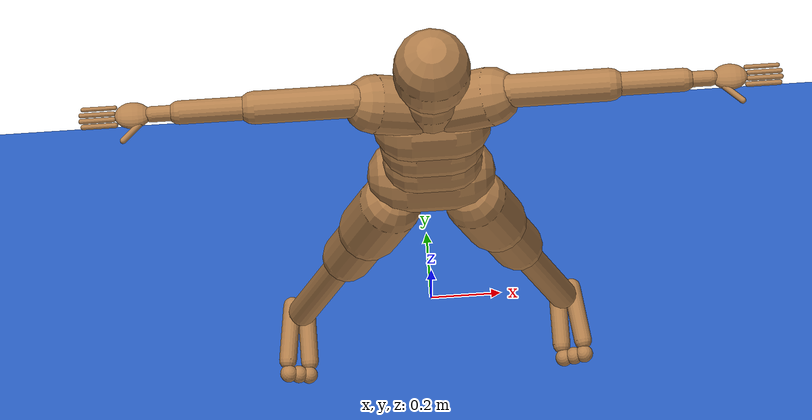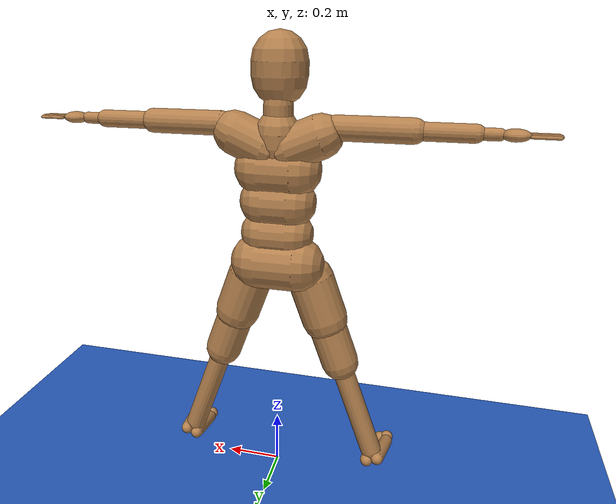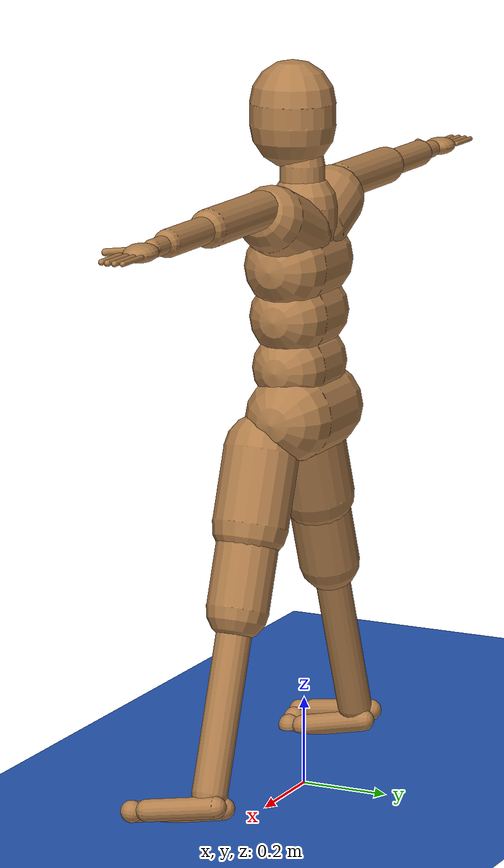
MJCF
<mujoco model="HumanoidCMU">
  <include file="../common.xml"/>
  <include file="humanoid_CMU_V2020.xml" />
  <size memory="1M"/>

  <custom>
    <numeric name="agent_planner" data="0" />
    <numeric name="agent_horizon" data="0.35" />
    <numeric name="agent_timestep" data="0.015" />
    <numeric name="sampling_spline_points" data="3" />
    <numeric name="sampling_exploration" data="0.05" />
    <numeric name="gradient_spline_points" data="5" />
    <numeric name="residual_Height Goal" data="1.4 0.0 1.5" />
  </custom>

  <sensor>
    <user name="Height" dim="1" user="6 100.0 0.0 100.0 0.1" />
    <user name="Balance" dim="1" user="6 50.0 0.0 100.0 0.1" />
    <user name="CoM Vel." dim="2" user="0 10.0 0.0 100.0" />
    <user name="Joint Vel." dim="62" user="0 0.01 0.0 0.1" />
    <user name="Control" dim="56" user="3 0.025 0.0 0.1 0.3" />
    <framepos name="trace" objtype="body" objname="root"/>
    <framepos name="torso_position" objtype="body" objname="root"/>
    <framepos name="head_position" objtype="body" objname="head"/>
    <framequat name="head_orientation" objtype="body" objname="head"/>
    <framezaxis name="torso_zaxis" objtype="body" objname="root"/>
    <framelinvel name="torso_subtreelinvel" objtype="body" objname="root" />
    <subtreecom name="torso_subtreecom" body="root"/>
    <framexaxis name="torso_forward" objtype="body" objname="root" />
    <framepos name="sp0" objtype="body" objname="lfoot"/>
    <framepos name="sp1" objtype="body" objname="rfoot"/>
    <framepos name="sp2" objtype="body" objname="ltoes"/>
    <framepos name="sp3" objtype="body" objname="rtoes"/>
    <subtreelinvel name="foot_right_vel" body="rfoot"/>
    <subtreelinvel name="foot_left_vel" body="lfoot"/>
  </sensor>
</mujoco>

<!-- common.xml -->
<mujoco>

    <visual>
        <headlight ambient=".4 .4 .4" diffuse=".8 .8 .8" specular="0.1 0.1 0.1"/>
        <map znear=".01"/>
        <quality shadowsize="2048"/>
        <global elevation="-15"/>
    </visual>

    <asset>
        <texture name="blue_grid" type="2d" builtin="checker" rgb1=".02 .14 .44" rgb2=".27 .55 1" width="300" height="300" mark="edge" markrgb="1 1 1"/>
        <material name="blue_grid" texture="blue_grid" texrepeat="1 1" texuniform="true" reflectance=".2"/>

        <texture name="grey_grid" type="2d" builtin="checker" rgb1=".26 .26 .26" rgb2=".6 .6 .6" width="300" height="300" mark="edge" markrgb="1 1 1"/>
        <material name="grey_grid" texture="grey_grid" texrepeat="1 1" texuniform="true" reflectance=".2"/>
        <texture name="skybox" type="skybox" builtin="gradient" rgb1=".66 .79 1" rgb2=".9 .91 .93" width="800" height="800"/>

        <material name="self" rgba=".7 .5 .3 1"/>
        <material name="self_default" rgba=".7 .5 .3 1"/>
        <material name="self_highlight" rgba="0 .5 .3 1"/>
        <material name="effector" rgba=".7 .4 .2 1"/>
        <material name="effector_default" rgba=".7 .4 .2 1"/>
        <material name="effector_highlight" rgba="0 .5 .3 1"/>
        <material name="decoration" rgba=".2 .6 .3 1"/>
        <material name="eye" rgba="0 .2 1 1"/>
        <material name="target" rgba=".6 .3 .3 1"/>
        <material name="target_default" rgba=".6 .3 .3 1"/>
        <material name="target_highlight" rgba=".6 .3 .3 .4"/>
        <material name="site" rgba=".5 .5 .5 .3"/>
    </asset>

    <size memory="1M"/>

    <statistic extent="0.4" center="0.3 0.1 0"/>

    <visual>
        <quality shadowsize="8192"/>
        <global azimuth="180" elevation="-30"/>
    </visual>

    <default>
        <geom friction="1.0"/>
    </default>

    <compiler angle="radian" autolimits="true"/>

    <asset>
        <mesh name="apple" file="../../shared_assets/apple/apple.obj" />
        <mesh name="apple_contact0" file="../../shared_assets/apple/contact0.stl"  />
        <mesh name="apple_contact1" file="../../shared_assets/apple/contact1.stl"  />

        <mesh name="doorknob" file="../../shared_assets/doorknob/doorknob.obj" />

        <mesh name="flashlight" file="../../shared_assets/flashlight/flashlight.obj" />
        <mesh name="flashlight_contact0" file="../../shared_assets/flashlight/contact0.stl"  />
        <mesh name="flashlight_contact1" file="../../shared_assets/flashlight/contact1.stl"  />

        <mesh name="hammer" file="../../shared_assets/hammer/hammer.obj" />
        <mesh name="hammer_contact0" file="../../shared_assets/hammer/contact0.stl"  />
        <mesh name="hammer_contact1" file="../../shared_assets/hammer/contact1.stl"  />

        <mesh name="phone" file="../../shared_assets/phone/phone.obj" />
        <mesh name="phone_contact0" file="../../shared_assets/phone/contact0.stl"  />
        <mesh name="phone_contact1" file="../../shared_assets/phone/contact1.stl"  />
        <mesh name="phone_contact2" file="../../shared_assets/phone/contact2.stl"  />

        <mesh name="stapler" file="../../shared_assets/stapler/stapler.obj" />
        <mesh name="stapler_contact0" file="../../shared_assets/stapler/contact0.stl"  />
        <mesh name="stapler_contact1" file="../../shared_assets/stapler/contact1.stl"  />
        <mesh name="stapler_contact2" file="../../shared_assets/stapler/contact2.stl"  />
        <mesh name="stapler_contact3" file="../../shared_assets/stapler/contact3.stl"  />
        <mesh name="stapler_contact4" file="../../shared_assets/stapler/contact4.stl"  />

        <mesh name="waterbottle" file="../../shared_assets/waterbottle/waterbottle.obj" />
        <mesh name="waterbottle_contact0" file="../../shared_assets/waterbottle/contact0.stl"  />
        <mesh name="waterbottle_contact1" file="../../shared_assets/waterbottle/contact1.stl"  />
    </asset>

</mujoco>

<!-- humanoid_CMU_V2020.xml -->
<!-- This model has been rescaled and better supports the incorporation of hands. -->
<mujoco model="Humanoid_CMU">
  <compiler angle="radian"/>
  <size njmax="500" nconmax="500"/>

  <default>
    <joint limited="true" solimplimit="0 0.99 0.01" stiffness="1" armature=".01" damping="1"/>
    <geom size="0.03 0 0" condim="1" friction="0.7 0.005 0.0001" solref="0.015 1" solimp="0.99 0.99 0.003"/>
    <general ctrllimited="true" ctrlrange="-1 1"/>
    <default class="humanoid">
      <geom type="capsule" material="self" group="2"/>
      <default class="stiff_medium">
        <joint stiffness="10" damping="2"/>
      </default>
      <default class="stiff_medium_higher">
        <joint stiffness="50" damping="4"/>
      </default>
      <default class="stiff_high">
        <joint stiffness="200" damping="5"/>
      </default>
      <default class="sensor_site">
        <site type="sphere" size="0.01" group="4" rgba="1 0 0 .5"/>
      </default>
      <default class="contact">
        <geom condim="3" friction="1. 0.005 0.0001" solref="0.015 1" solimp="0.98 0.98 0.001" priority="1"/>
      </default>
    </default>
  </default>

  <worldbody>
    <geom name="floor" type="plane" conaffinity="1" size="50 50 .05" material="blue_grid"/>

    <body name="root" pos="0 0  0.91" childclass="humanoid" quat="1 1 0 0">
      <site name="root" size=".01" rgba="0.5 0.5 0.5 0"/>

      <light name="tracking_light" pos="0 0 7" dir="0 0 -1" mode="trackcom"/>
      <camera name="back" pos="0 3 1.4" xyaxes="-1 0 0 0 -1 2" mode="trackcom"/>
      <camera name="side" pos="-3 0 1.4" xyaxes="0 -1 0 1 0 2" mode="trackcom"/>
      <camera name="front_side" pos="-2 -2 0.5" xyaxes="0.5 -0.5 0 0.1 0.1 1"  mode="trackcom"/>

      <camera name="bodycam" pos="0 .3 .1" xyaxes="-1 0 0 0 1 0" fovy="80"/>

      <freejoint/>

      <geom name="root_geom" size="0.1 0.07" pos="0 -0.05 0" quat="1 0 -1 0" />
      <body name="lhipjoint">
        <geom name="lhipjoint" size="0.008 0.02187363" pos="0.0509685 -0.0459037 0.024723" quat="0.5708 -0.566602 -0.594264 0"/>
        <body name="lfemur" pos="0.101937 -0.0918074 0.0494461" quat="0.984808 0 0 0.173648">
          <joint name="lfemurrz" pos="0 0 0" axis="0 0 1" range="-1.0472 1.22173" class="stiff_medium"/>
          <joint name="lfemurry" pos="0 0 0" axis="0 1 0" range="-1.22173 1.22173" class="stiff_medium"/>
          <joint name="lfemurrx" pos="0 0 0" axis="1 0 0" range="-2.79253 0.349066" class="stiff_medium"/>
          <geom name="lfemur_upper" size="0.085 0.083" pos="0 -0.115473 0" quat="0.696364 -0.696364 -0.122788 -0.122788" mass="0"/>
          <geom name="lfemur" size="0.07 0.182226" pos="0 -0.202473 0" quat="0.696364 -0.696364 -0.122788 -0.122788" />
          <body name="ltibia" pos="0 -0.404945 0">
            <joint name="ltibiarx" pos="0 0 0" axis="1 0 0" range="0.01 2.96706"/>
            <geom name="ltibia" size="0.04 0.1825614" pos="0 -0.202846 0" quat="0.696364 -0.696364 -0.122788 -0.122788"/>
            <body name="lfoot" pos="0 -0.415693 0" quat="1 -1 0 0">
              <site name="lfoot_touch" type="capsule" pos="0.0 0.02 -0.015" size="0.025 0.01" zaxis="1 0 0" class="sensor_site"/>
              <joint name="lfootrz" pos="0 0 0" axis="0 0 1" range="-1.22173 0.349066" class="stiff_medium"/>
              <joint name="lfootrx" pos="0 0 0" axis="1 0 0" range="-0.785398 0.8" class="stiff_medium"/>
              <geom name="lfoot" size="0.025 0.08" pos="-0.0269999975006 -0.05 -0.0113878" quat=" 0.76725516 -0.64051114  0.02306487 -0.02306583" class="contact"/>
              <geom name="lfoot_ch" size="0.025 0.08" pos="0.0270000024994 -0.05 -0.0113878" quat=" 0.72887266 -0.59399462 -0.24074283 -0.2407425 " class="contact"/>
              <body name="ltoes" pos="0 -0.156372 -0.0227756">
                <joint name="ltoesrx" pos="0 0 0" axis="1 0 0" range="-1.5708 0.349066"/>
                <geom name="ltoes0" type="sphere" size="0.025" pos="0 -0.01 -.01" class="contact"/>
                <geom name="ltoes1" type="sphere" size="0.025" pos=".03 -0.01 -.01" class="contact"/>
                <geom name="ltoes2" type="sphere" size="0.025" pos="-.03 -0.01 -.01" class="contact"/>
                <site name="ltoes_touch" type="capsule" pos="0.0 -0.01 -0.02" size="0.025 0.03" zaxis="1 0 0" class="sensor_site"/>
              </body>
            </body>
          </body>
        </body>
      </body>
      <body name="rhipjoint">
        <geom name="rhipjoint" size="0.008 0.02187363" pos="-0.0509685 -0.0459037 0.024723" quat="0.574856 -0.547594 0.608014 0"/>
        <body name="rfemur" pos="-0.101937 -0.0918074 0.0494461" quat="0.984808 0 0 -0.173648">
          <joint name="rfemurrz" pos="0 0 0" axis="0 0 1" range="-1.22173 1.0472" class="stiff_medium"/>
          <joint name="rfemurry" pos="0 0 0" axis="0 1 0" range="-1.22173 1.22173" class="stiff_medium"/>
          <joint name="rfemurrx" pos="0 0 0" axis="1 0 0" range="-2.79253 0.349066" class="stiff_medium"/>
          <geom name="rfemur_upper" size="0.085 0.083" pos="0 -0.115473 0" quat="0.696364 -0.696364 0.122788 0.122788" mass="0"/>
          <geom name="rfemur" size="0.07 0.182226" pos="0 -0.202473 0" quat="0.696364 -0.696364 0.122788 0.122788" />
          <body name="rtibia" pos="0 -0.404945 0">
            <joint name="rtibiarx" pos="0 0 0" axis="1 0 0" range="0.01 2.96706"/>
            <geom name="rtibia" size="0.04 0.1825614" pos="0 -0.202846 0" quat="0.696364 -0.696364 0.122788 0.122788"/>
            <body name="rfoot" pos="0 -0.415693 0" quat="0.707107 -0.707107 0 0">
              <site name="rfoot_touch" type="capsule" pos="0.0 0.02 -0.015" size="0.025 0.01" zaxis="1 0 0" class="sensor_site"/>
              <joint name="rfootrz" pos="0 0 0" axis="0 0 1" range="-0.349066 1.22173" class="stiff_medium"/>
              <joint name="rfootrx" pos="0 0 0" axis="1 0 0" range="-0.785398 .8" class="stiff_medium"/>
              <geom name="rfoot" size="0.025 0.08" pos="-0.0269999965316 -0.05 -0.0113878" quat=" 0.73520687 -0.58633523  0.24050108  0.24050079" class="contact"/>
              <geom name="rfoot_ch" size="0.025 0.08" pos="0.0270000034684 -0.05 -0.0113878" quat=" 0.77312469 -0.633231   -0.02545846  0.02545836" class="contact"/>
              <body name="rtoes" pos="0 -0.156372 -0.0227756">
                <joint name="rtoesrx" pos="0 0 0" axis="1 0 0" range="-1.5708 0.349066"/>
                <geom name="rtoes0" type="sphere" size="0.025" pos="0 -0.01 -.01" class="contact"/>
                <geom name="rtoes1" type="sphere" size="0.025" pos=".03 -0.01 -.01" class="contact"/>
                <geom name="rtoes2" type="sphere" size="0.025" pos="-.03 -0.01 -.01" class="contact"/>
                <site name="rtoes_touch" type="capsule" pos="0.0 -0.01 -0.02" size="0.025 0.03" zaxis="1 0 0" class="sensor_site"/>
              </body>
            </body>
          </body>
        </body>
      </body>
      <body name="lowerback">
        <joint name="lowerbackrz" pos="0 0 0" axis="0 0 1" range="-0.523599 0.523599" class="stiff_high"/>
        <joint name="lowerbackry" pos="0 0 0" axis="0 1 0" range="-0.523599 0.523599" class="stiff_high"/>
        <joint name="lowerbackrx" pos="0 0 0" axis="1 0 0" range="-0.349066 0.785398" class="stiff_medium"/>
        <geom name="lowerback" size="0.085 0.04540016" pos="0.00282931 0.0566065 0.01" quat="1 0 1 0"/>
        <body name="upperback" pos="0.000565862 0.113213 -0.00805298">
          <joint name="upperbackrz" pos="0 0 0" axis="0 0 1" range="-0.523599 0.523599" class="stiff_high"/>
          <joint name="upperbackry" pos="0 0 0" axis="0 1 0" range="-0.523599 0.523599" class="stiff_high"/>
          <joint name="upperbackrx" pos="0 0 0" axis="1 0 0" range="-0.349066 0.785398" class="stiff_medium"/>
          <geom name="upperback" size="0.09 0.04542616" pos="0.000256264 0.0567802 0.02" quat="1 0 1 0"/>
          <body name="thorax" pos="0.000512528 0.11356 0.000936821">
            <joint name="thoraxrz" pos="0 0 0" axis="0 0 1" range="-0.523599 0.523599" class="stiff_high"/>
            <joint name="thoraxry" pos="0 0 0" axis="0 1 0" range="-0.523599 0.523599" class="stiff_high"/>
            <joint name="thoraxrx" pos="0 0 0" axis="1 0 0" range="-0.349066 0.785398" class="stiff_medium"/>
            <geom name="thorax" size="0.095 0.0570206" pos="0 0.0569725 0.02" quat="1 0 1 0"/>
            <body name="lowerneck" pos="0 0.113945 0.00468037">
              <joint name="lowerneckrz" pos="0 0 0" axis="0 0 1" range="-0.523599 0.523599" class="stiff_medium_higher"/>
              <joint name="lowerneckry" pos="0 0 0" axis="0 1 0" range="-0.523599 0.523599" class="stiff_medium_higher"/>
              <joint name="lowerneckrx" pos="0 0 0" axis="1 0 0" range="-0.349066 0.785398" class="stiff_medium_higher"/>
              <geom name="lowerneck" size="0.075 0.02279225" pos="-0.00165071 0.0452401 0.00534359" quat="1 1 0 0"/>
              <body name="upperneck" pos="-0.00330143 0.0904801 0.0106872">
                <joint name="upperneckrz" pos="0 0 0" axis="0 0 1" range="-0.523599 0.523599" class="stiff_medium_higher"/>
                <joint name="upperneckry" pos="0 0 0" axis="0 1 0" range="-0.523599 0.523599" class="stiff_medium_higher"/>
                <joint name="upperneckrx" pos="0 0 0" axis="1 0 0" range="-0.349066 0.785398" class="stiff_medium_higher"/>
                <geom name="upperneck" size="0.05 0.0225272" pos="0.000500875 0.0449956 -0.00224644" quat="1 1 0 0"/>
                <body name="head" pos="0.00100175 0.13 -0.00449288">
                  <camera name="egocentric" pos="0 0 0" xyaxes="-1 0 0 0 1 0" fovy="80"/>
                  <joint name="headrz" pos="0 0 0" axis="0 0 1" range="-0.523599 0.523599" class="stiff_medium_higher"/>
                  <joint name="headry" pos="0 0 0" axis="0 1 0" range="-0.523599 0.523599" class="stiff_medium_higher"/>
                  <joint name="headrx" pos="0 0 0" axis="1 0 0" range="-0.349066 0.785398" class="stiff_medium_higher"/>
                  <geom name="head" size="0.095 0.024104" pos="0.000341465 0.048184 0.025" quat="1 1 0 0"/>
                </body>
              </body>
            </body>
            <body name="lclavicle" pos="0 0.113945 0.00468037">
              <joint name="lclaviclerz" pos="0 0 0" axis="0 0 1" range="0 0.349066" class="stiff_high"/>
              <joint name="lclaviclery" pos="0 0 0" axis="0 1 0" range="-0.349066 0.174533" class="stiff_high"/>
              <geom name="lclavicle" size="0.075 0.06" pos="0.0918817 0.0382636 0.00535704" quat="0.688 0.279 -0.67 0"/>
              <body name="lhumerus" pos="0.18 0.09 0.0107141" quat="0.183013 0.683013 -0.683013 0.183013">
                <joint name="lhumerusrz" pos="0 0 0" axis="0 0 1" range="-1.1 1.5708" class="stiff_medium"/>
                <joint name="lhumerusry" pos="0 0 0" axis="0 1 0" range="-1.5708 1.5708" class="stiff_medium"/>
                <joint name="lhumerusrx" pos="0 0 0" axis="1 0 0" range="-1.0472 1.5708" class="stiff_medium"/>
                <site name="lhumerus_ft" class="sensor_site"/>
                <geom name="lhumerus" size="0.042 0.1245789" pos="0 -0.138421 0" quat="0.612372 -0.612372 0.353553 0.353553"/>
                <body name="lradius" pos="0 -0.276843 0">
                  <joint name="lradiusrx" pos="0 0 0" axis="1 0 0" range="-0.174533 2.96706"/>
                  <geom name="lradius" size="0.03 0.08169111" pos="0 -0.0907679 0" quat="0.612372 -0.612372 0.353553 0.353553"/>
                  <site name="lwrist" pos="0 -0.181536 0" quat="-0.5 0 0.866025 0"/>
                  <body name="lwrist" pos="0 -0.181536 0" quat="-0.5 0 0.866025 0">
                    <joint name="lwristry" pos="0 0 0" axis="0 1 0" range="0 3.14159"/>
                    <geom name="lwrist" size="0.02 0.03" pos="0 -0.03 0" quat="1.59389e-11 -1.59388e-11 -0.707107 -0.707107"/>
                    <body name="lhand" pos="0 -0.0907676 0">
                      <joint name="lhandrz" pos="0 0 0" axis="0 0 1" range="-0.785398 0.785398"/>
                      <joint name="lhandrx" pos="0 0 0" axis="1 0 0" range="-1.5708 1.5708"/>
                      <site name="lhand_touch" size=".012 0.005 0.015" pos="0 -0.016752 -0.02" quat="0 0 -1 -1" type="ellipsoid" class="sensor_site"/>
                      <geom name="lhand" size="0.035 0.02 0.045" pos="0 -0.016752 0" quat="0 0 -1 -1" type="ellipsoid" class="contact"/>
                      <body name="lfingers" pos="0 -0.075 0">
                        <joint name="lfingersrx" pos="0 0.015 0" axis="1 0 0" range="0 1.5708"/>
                        <site name="lfingers_touch" type="box" size="0.023 0.013 0.003" pos="0 -0.042 -0.007" class="sensor_site"/>
                        <geom name="lfinger0" size="0.0065 0.04" pos="-.024 -0.025 0" quat="1 -1 0 0" class="contact"/>
                        <geom name="lfinger1" size="0.0065 0.04" pos="-.008 -0.03 0" quat="1 -1 0 0" class="contact"/>
                        <geom name="lfinger2" size="0.006 0.04" pos=".008 -0.03 0" quat="1 -1 0 0" class="contact"/>
                        <geom name="lfinger3" size="0.0055 0.04" pos=".024 -0.025 0" quat="1 -1 0 0" class="contact"/>
                      </body>
                      <body name="lthumb" pos="-.025 0 0" quat="0.92388 0 0 -0.382683">
                        <joint name="lthumbrz" pos="0 0 0" axis="0 0 1" range="-0.785398 0.785398"/>
                        <joint name="lthumbrx" pos="0 0 0" axis="1 0 0" range="0 1.57"/>
                        <site name="lthumb_touch" type="box" size="0.006 0.013 0.003" pos="0 -0.043 -0.007" class="sensor_site"/>
                        <geom name="lthumb" size="0.008 0.03" pos="0 -0.03 0" quat="0 0 -1 -1" class="contact"/>
                      </body>
                    </body>
                  </body>
                </body>
              </body>
            </body>
            <body name="rclavicle" pos="0 0.113945 0.00468037">
              <joint name="rclaviclerz" pos="0 0 0" axis="0 0 1" range="-0.349066 0" class="stiff_high"/>
              <joint name="rclaviclery" pos="0 0 0" axis="0 1 0" range="-0.174533 0.349066" class="stiff_high"/>
              <geom name="rclavicle" size="0.075 0.06" pos="-0.0918817 0.0382636 0.00535704" quat="0.688 0.279 0.67 0"/>
              <body name="rhumerus" pos="-0.18 0.09 0.0107141" quat="0.183013 0.683013 0.683013 -0.183013">
                <joint name="rhumerusrz" pos="0 0 0" axis="0 0 1" range="-1.1 1.5708" class="stiff_medium"/>
                <joint name="rhumerusry" pos="0 0 0" axis="0 1 0" range="-1.5708 1.5708" class="stiff_medium"/>
                <joint name="rhumerusrx" pos="0 0 0" axis="1 0 0" range="-1.0472 1.5708" class="stiff_medium"/>
                <site name="rhumerus_ft" class="sensor_site"/>
                <geom name="rhumerus" size="0.042 0.1245789" pos="0 -0.138421 0" quat="0.612372 -0.612372 -0.353553 -0.353553"/>
                <body name="rradius" pos="0 -0.276843 0">
                  <joint name="rradiusrx" pos="0 0 0" axis="1 0 0" range="-0.174533 2.96706"/>
                  <geom name="rradius" size="0.03 0.08169111" pos="0 -0.0907679 0" quat="0.61238 -0.612372 -0.353554 -0.353541"/>
                  <body name="rwrist" pos="0 -0.181536 0" quat="-0.5 0 -0.866025 0">
                    <joint name="rwristry" pos="0 0 0" axis="0 1 0" range="-3.14159 0"/>
                    <geom name="rwrist" size="0.02 0.03" pos="0 -0.03 0" quat="0 0 1 1"/>
                    <body name="rhand" pos="0 -0.0907676 0">
                      <joint name="rhandrz" pos="0 0 0" axis="0 0 1" range="-0.785398 0.785398"/>
                      <joint name="rhandrx" pos="0 0 0" axis="1 0 0" range="-1.5708 1.5708"/>
                      <site name="rhand_touch" size=".012 0.005 0.015" pos="0 -0.016752 -0.02" quat="0 0 1 1" type="ellipsoid" class="sensor_site"/>
                      <geom name="rhand" size="0.035 0.02 0.045" pos="0 -0.016752 0" quat="0 0 1 1" type="ellipsoid" class="contact"/>
                      <body name="rfingers" pos="0 -0.075 0">
                        <joint name="rfingersrx" pos="0 0.015 0" axis="1 0 0" range="0 1.5708"/>
                        <site name="rfingers_touch" type="box" size="0.023 0.013 0.003" pos="0 -0.042 -0.007" class="sensor_site"/>
                        <geom name="rfinger0" size="0.0065 0.04" pos=".024 -0.025 0" quat="1 -1 0 0" class="contact"/>
                        <geom name="rfinger1" size="0.0065 0.04" pos=".008 -0.03 0" quat="1 -1 0 0" class="contact"/>
                        <geom name="rfinger2" size="0.006 0.04" pos="-.008 -0.03 0" quat="1 -1 0 0" class="contact"/>
                        <geom name="rfinger3" size="0.0055 0.04" pos="-.024 -0.025 0" quat="1 -1 0 0" class="contact"/>
                      </body>
                      <body name="rthumb" pos=".025 0 0" quat="0.92388 0 0 0.382683">
                        <joint name="rthumbrz" pos="0 0 0" axis="0 0 1" range="-0.785398 0.785398"/>
                        <joint name="rthumbrx" pos="0 0 0" axis="1 0 0" range="0 1.57"/>
                        <site name="rthumb_touch" type="box" size="0.006 0.013 0.003" pos="0 -0.043 -0.007" class="sensor_site"/>
                        <geom name="rthumb" size="0.008 0.03" pos="0 -0.03 0" quat="6.21773e-11 -6.35284e-11 0.707107 0.707107" class="contact"/>
                      </body>
                    </body>
                  </body>
                </body>
              </body>
            </body>
          </body>
        </body>
      </body>
    </body>
  </worldbody>

  <contact>
    <exclude body1="lclavicle" body2="rclavicle"/>
    <exclude body1="lowerneck" body2="lclavicle"/>
    <exclude body1="lowerneck" body2="rclavicle"/>
    <exclude body1="upperneck" body2="lclavicle"/>
    <exclude body1="upperneck" body2="rclavicle"/>
  </contact>

  <actuator>
    <motor name="headrx" joint="headrx" gear="20"/>
    <motor name="headry" joint="headry" gear="20"/>
    <motor name="headrz" joint="headrz" gear="20"/>
    <motor name="lclaviclery" joint="lclaviclery" gear="20"/>
    <motor name="lclaviclerz" joint="lclaviclerz" gear="20"/>
    <motor name="lfemurrx" joint="lfemurrx" gear="120"/>
    <motor name="lfemurry" joint="lfemurry" gear="40"/>
    <motor name="lfemurrz" joint="lfemurrz" gear="40"/>
    <motor name="lfingersrx" joint="lfingersrx" gear="20"/>
    <motor name="lfootrx" joint="lfootrx" gear="20"/>
    <motor name="lfootrz" joint="lfootrz" gear="20"/>
    <motor name="lhandrx" joint="lhandrx" gear="20"/>
    <motor name="lhandrz" joint="lhandrz" gear="20"/>
    <motor name="lhumerusrx" joint="lhumerusrx" gear="40"/>
    <motor name="lhumerusry" joint="lhumerusry" gear="40"/>
    <motor name="lhumerusrz" joint="lhumerusrz" gear="40"/>
    <motor name="lowerbackrx" joint="lowerbackrx" gear="40"/>
    <motor name="lowerbackry" joint="lowerbackry" gear="40"/>
    <motor name="lowerbackrz" joint="lowerbackrz" gear="40"/>
    <motor name="lowerneckrx" joint="lowerneckrx" gear="20"/>
    <motor name="lowerneckry" joint="lowerneckry" gear="20"/>
    <motor name="lowerneckrz" joint="lowerneckrz" gear="20"/>
    <motor name="lradiusrx" joint="lradiusrx" gear="40"/>
    <motor name="lthumbrx" joint="lthumbrx" gear="20"/>
    <motor name="lthumbrz" joint="lthumbrz" gear="20"/>
    <motor name="ltibiarx" joint="ltibiarx" gear="80"/>
    <motor name="ltoesrx" joint="ltoesrx" gear="20"/>
    <motor name="lwristry" joint="lwristry" gear="20"/>
    <motor name="rclaviclery" joint="rclaviclery" gear="20"/>
    <motor name="rclaviclerz" joint="rclaviclerz" gear="20"/>
    <motor name="rfemurrx" joint="rfemurrx" gear="120"/>
    <motor name="rfemurry" joint="rfemurry" gear="40"/>
    <motor name="rfemurrz" joint="rfemurrz" gear="40"/>
    <motor name="rfingersrx" joint="rfingersrx" gear="20"/>
    <motor name="rfootrx" joint="rfootrx" gear="20"/>
    <motor name="rfootrz" joint="rfootrz" gear="20"/>
    <motor name="rhandrx" joint="rhandrx" gear="20"/>
    <motor name="rhandrz" joint="rhandrz" gear="20"/>
    <motor name="rhumerusrx" joint="rhumerusrx" gear="40"/>
    <motor name="rhumerusry" joint="rhumerusry" gear="40"/>
    <motor name="rhumerusrz" joint="rhumerusrz" gear="40"/>
    <motor name="rradiusrx" joint="rradiusrx" gear="40"/>
    <motor name="rthumbrx" joint="rthumbrx" gear="20"/>
    <motor name="rthumbrz" joint="rthumbrz" gear="20"/>
    <motor name="rtibiarx" joint="rtibiarx" gear="80"/>
    <motor name="rtoesrx" joint="rtoesrx" gear="20"/>
    <motor name="rwristry" joint="rwristry" gear="20"/>
    <motor name="thoraxrx" joint="thoraxrx" gear="40"/>
    <motor name="thoraxry" joint="thoraxry" gear="40"/>
    <motor name="thoraxrz" joint="thoraxrz" gear="40"/>
    <motor name="upperbackrx" joint="upperbackrx" gear="40"/>
    <motor name="upperbackry" joint="upperbackry" gear="40"/>
    <motor name="upperbackrz" joint="upperbackrz" gear="40"/>
    <motor name="upperneckrx" joint="upperneckrx" gear="20"/>
    <motor name="upperneckry" joint="upperneckry" gear="20"/>
    <motor name="upperneckrz" joint="upperneckrz" gear="20"/>
  </actuator>

</mujoco>
